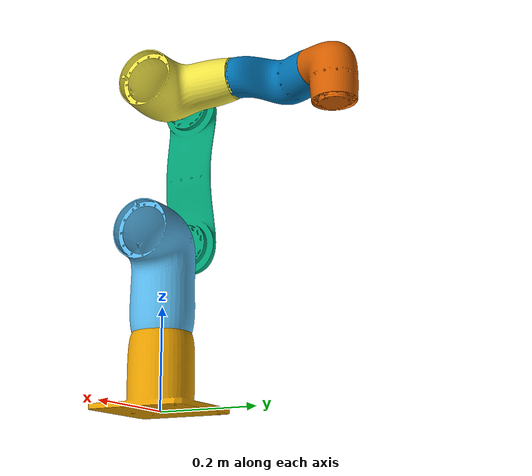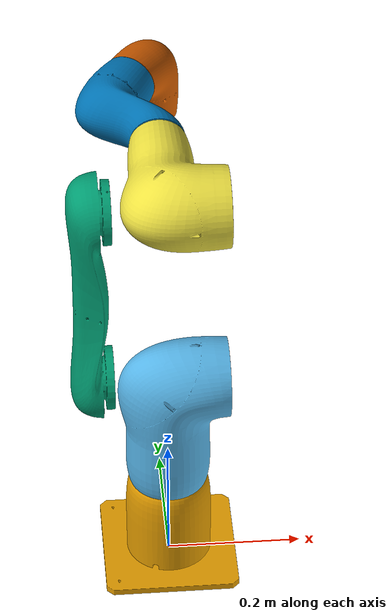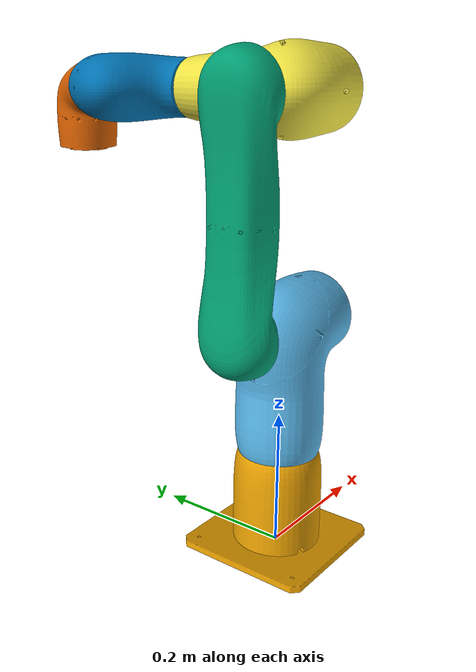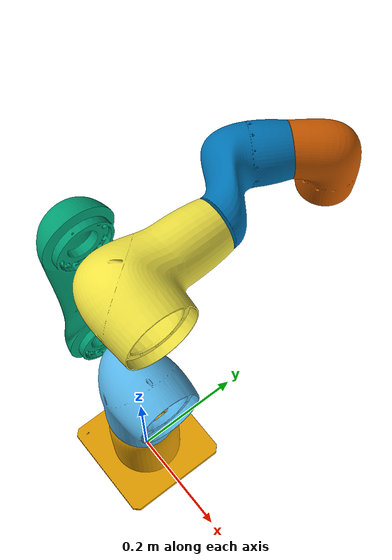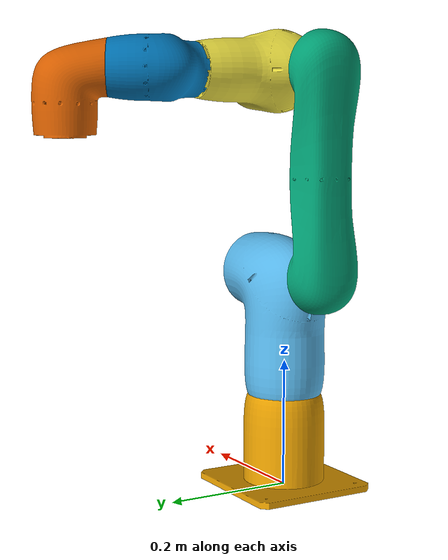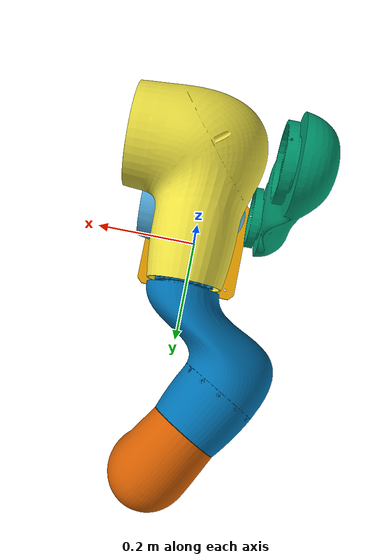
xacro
<?xml version="1.0"?>
<robot xmlns:xacro="http://www.ros.org/wiki/xacro" name="robot">

  <!-- ================= CONSTANTS ================= -->
  <xacro:property name="pi" value="3.141592653589793"/>

  <!-- ================= MACROS ================= -->

  <!-- Link with inertial + mesh -->
  <xacro:macro name="cobot_link" params="name mesh mass xyz rpy ixx ixy ixz iyy iyz izz">
    <link name="${name}">
      <inertial>
        <origin xyz="${xyz}" rpy="${rpy}"/>
        <mass value="${mass}"/>
        <inertia
          ixx="${ixx}" ixy="${ixy}" ixz="${ixz}"
          iyy="${iyy}" iyz="${iyz}" izz="${izz}"/>
      </inertial>

      <visual>
        <origin xyz="0 0 0" rpy="0 0 0"/>
        <geometry>
          <mesh filename="package://addverb_cobot_description/meshes/${mesh}"/>
        </geometry>
      </visual>

      <collision>
        <origin xyz="0 0 0" rpy="0 0 0"/>
        <geometry>
          <mesh filename="package://addverb_cobot_description/meshes/${mesh}"/>
        </geometry>
      </collision>
    </link>
  </xacro:macro>

  <!-- Revolute joint -->
  <xacro:macro name="cobot_joint" params="name parent child xyz rpy axis lower upper effort velocity">
    <joint name="${name}" type="revolute">
      <origin xyz="${xyz}" rpy="${rpy}"/>
      <parent link="${parent}"/>
      <child link="${child}"/>
      <axis xyz="${axis}"/>
      <limit lower="${lower}" upper="${upper}" effort="${effort}" velocity="${velocity}"/>
    </joint>
  </xacro:macro>

  <!-- ================= LINKS ================= -->

  <!-- base_link -->
  <xacro:cobot_link
    name="base_link"
    mesh="base_link.STL"
    mass="3.729"
    xyz="0 0 0.019"
    rpy="0 0 0"
    ixx="0.016307106" ixy="2.079E-06" ixz="-1.378E-06"
    iyy="0.016302834" iyz="-4.998E-06" izz="0.022458155"/>

  <!-- link1 -->
  <xacro:cobot_link
    name="link1"
    mesh="link1.STL"
    mass="7.919"
    xyz="-0.01254 0 0.272"
    rpy="0 0 0"
    ixx="0.044879950" ixy="7.346E-06" ixz="0.006377064"
    iyy="0.047389946" iyz="-1.534E-06" izz="0.015930027"/>

  <!-- link2 -->
  <xacro:cobot_link
    name="link2"
    mesh="link2.STL"
    mass="1.017"
    xyz="-0.10537 0 0.14998"
    rpy="0 0 0"
    ixx="0.016383576" ixy="0" ixz="-5.01E-07"
    iyy="0.015505423" iyz="8.3217E-06" izz="0.001453264"/>

  <!-- link3 -->
  <xacro:cobot_link
    name="link3"
    mesh="link3.STL"
    mass="5.574"
    xyz="-0.01755 0.03359 0"
    rpy="0 0 0"
    ixx="0.021340532" ixy="-0.003304844" ixz="1.2974E-06"
    iyy="0.009841027" iyz="1.3202E-05" izz="0.023306443"/>

  <!-- link4 -->
  <xacro:cobot_link
    name="link4"
    mesh="link4.STL"
    mass="1.894"
    xyz="-0.05065 -0.1059 0"
    rpy="0 0 0"
    ixx="0.003626317" ixy="0.000600942" ixz="-2.750E-06"
    iyy="0.002331370" iyz="3.309E-06" izz="0.004130374"/>

  <!-- link5 -->
  <xacro:cobot_link
    name="link5"
    mesh="link5.STL"
    mass="1.791"
    xyz="-0.00216 -0.00360 -0.04603"
    rpy="0 0 0"
    ixx="0.002516338" ixy="-6.5634E-05" ixz="0.000102333"
    iyy="0.002442610" iyz="0.000185747" izz="0.001857540"/>

  <!-- ================= JOINTS ================= -->

  <xacro:cobot_joint
    name="joint1"
    parent="base_link"
    child="link1"
    xyz="0 0 0"
    rpy="0 0 0"
    axis="0 0 1"
    lower="-${pi}" upper="${pi}"
    effort="150" velocity="3"/>

  <xacro:cobot_joint
    name="joint2"
    parent="link1"
    child="link2"
    xyz="0 0 0.346"
    rpy="0 0 0"
    axis="-1 0 0"
    lower="-0.75" upper="2.05"
    effort="150" velocity="1"/>

  <xacro:cobot_joint
    name="joint3"
    parent="link2"
    child="link3"
    xyz="0 0 0.305"
    rpy="0 0 0"
    axis="1 0 0"
    lower="-1" upper="1"
    effort="150" velocity="5"/>

  <xacro:cobot_joint
    name="joint4"
    parent="link3"
    child="link4"
    xyz="-0.0009127 0.36813 0"
    rpy="0 0 0"
    axis="0 -1 0"
    lower="-${pi}" upper="${pi}"
    effort="80" velocity="1"/>

  <xacro:cobot_joint
    name="joint5"
    parent="link4"
    child="link5"
    xyz="0 0 0"
    rpy="0 0 0"
    axis="0.5 0.86603 0"
    lower="-${pi}" upper="${pi}"
    effort="80" velocity="1"/>

</robot>
